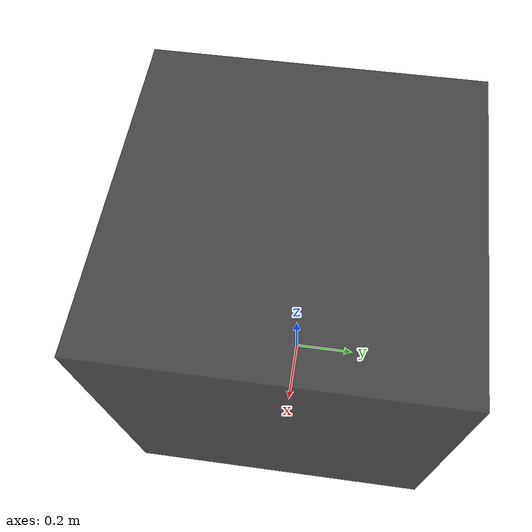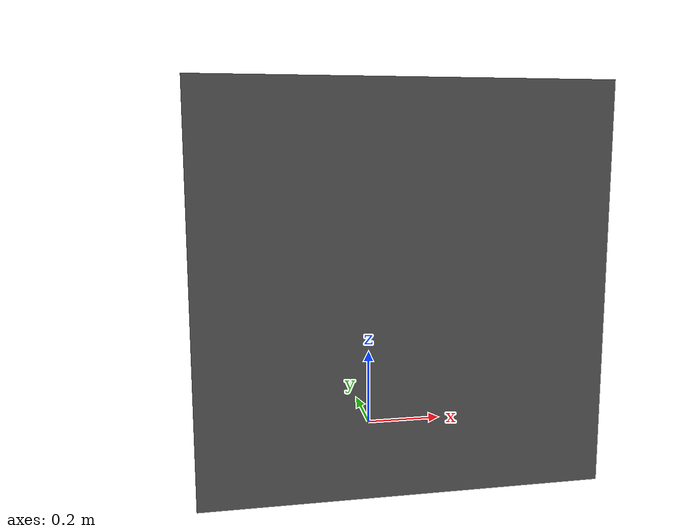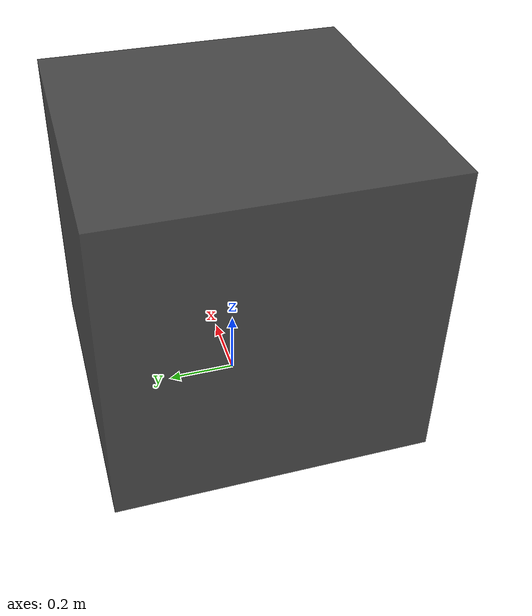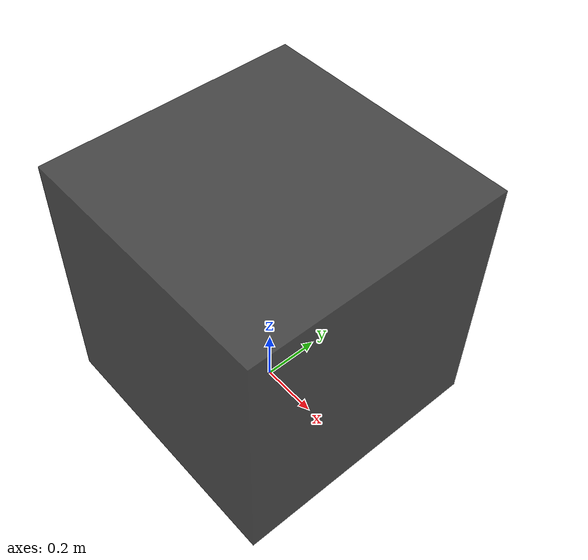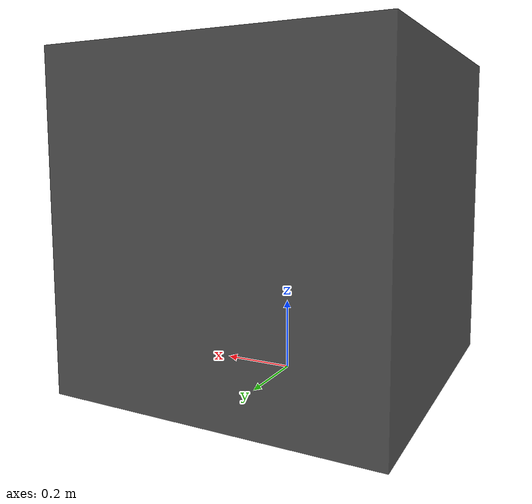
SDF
<?xml version='1.0'?>
<sdf version="1.5">
  <model name="block_90x90_transparent"> <!-- Very important to change-->
    <static>false</static>
    <pose>0 0 0 0 0 0</pose> <!-- Translation: X Y Z and Rotation: Roll Pitch Yaw (In Radian)-->
    <link name="body">
      <inertial>
        <mass>30</mass>
        <inertia> <!-- inertias are tricky to compute -->
          <ixx>0.7003125</ixx>       <!-- for a box: ixx = 0.083 * mass * (y*y + z*z) -->
          <ixy>0.0</ixy>         <!-- for a box: ixy = 0 -->
          <ixz>0.0</ixz>         <!-- for a box: ixz = 0 -->
          <iyy>0.7003125</iyy>       <!-- for a box: iyy = 0.083 * mass * (x*x + z*z) -->
          <iyz>0.0</iyz>         <!-- for a box: iyz = 0 -->
          <izz>0.7003125</izz>       <!-- for a box: izz = 0.083 * mass * (x*x + y*y) -->
        </inertia>
      </inertial>

       <collision name="collision"> <!-- You can use mesh like below -->
       <transparency>0.2</transparency>
        <geometry>
          <mesh>
             <uri>/home/sorox23/robotic_ws/master_thesis_ws/src/property_based_tester/environment/models/block_90x90_transparent/meshes/block_90x90_transparent.stl</uri>
             <scale>0.001 0.001 0.001</scale>
          </mesh>
        </geometry>
      </collision>

      <visual name="visual">
      <transparency>0.2</transparency>
        <geometry>
          <mesh>
             <uri>/home/sorox23/robotic_ws/master_thesis_ws/src/property_based_tester/environment/models/block_90x90_transparent/meshes/block_90x90_transparent.stl</uri>
             <scale>0.001 0.001 0.001</scale>
          </mesh>
        </geometry>

        <material>
          <script>
             <uri>/home/sorox23/robotic_ws/master_thesis_ws/src/property_based_tester/environment/models/block_90x90_transparent/materials/scripts</uri>
             <uri>/home/sorox23/robotic_ws/master_thesis_ws/src/property_based_tester/environment/models/block_90x90_transparent/materials/textures</uri>
             <name>Gazebo/FlatBlack</name>
          </script>
        </material>
      </visual>
    </link>
  </model>
</sdf>
